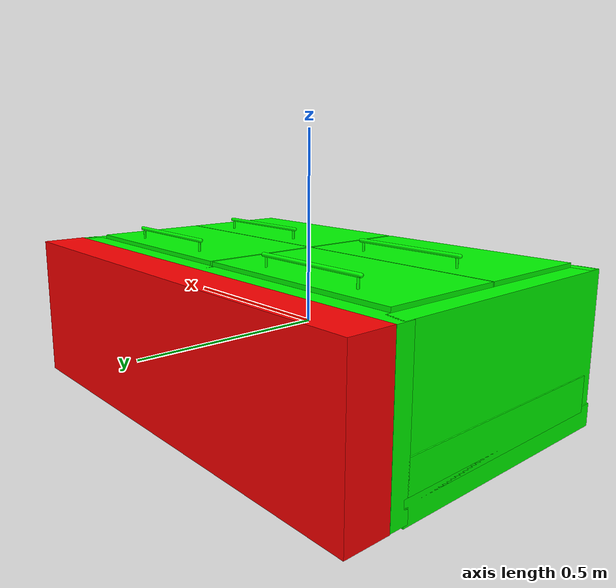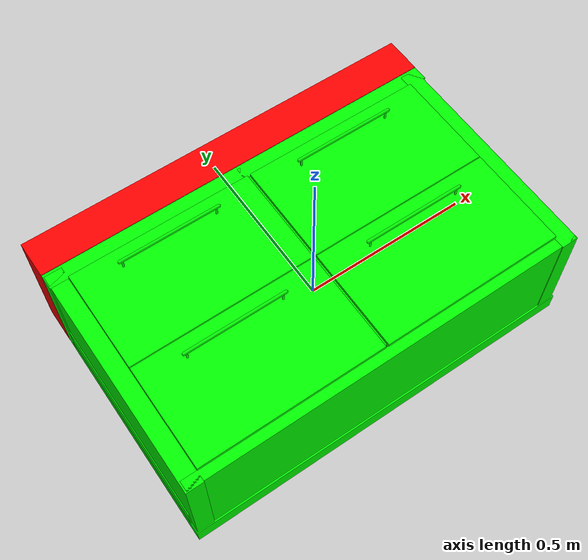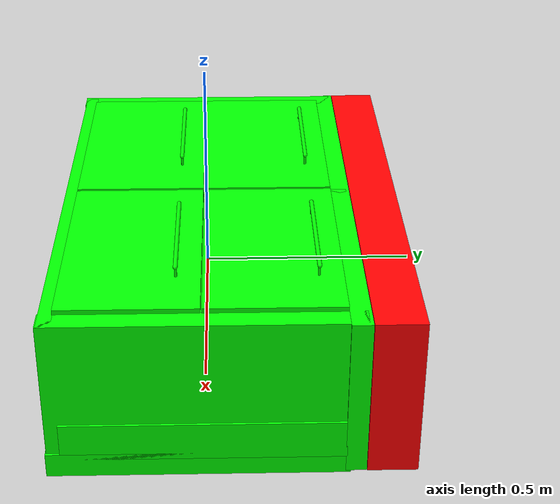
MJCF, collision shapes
<mujoco model="Dresser_205_1">
  <compiler angle="radian" boundmass="0.01"/>

  <default>
    <default class="/">
      <default class="__VISUAL_MJT__">
        <geom contype="0" conaffinity="0"/>
      </default>
      <default class="__STRUCTURAL_MJT__">
        <geom contype="8" conaffinity="15" group="4" friction="0.9 0.9 0.001" solref="0.025" solimp="0.998 0.998"/>
      </default>
      <default class="__DYNAMIC_MJT__">
        <geom conaffinity="15" group="4" friction="0.9 0.9 0.001" solref="0.025" solimp="0.998 0.998"/>
      </default>
    </default>
  </default>

  <asset>
    <texture type="2d" name="LightWoodCounters3" file="LightWoodCounters.png"/>
    <texture type="2d" name="DarkWoodSmooth" file="WoodGrains1.png"/>
    <texture type="2d" name="HammeredMetal_Dark" file="HammeredMetal_AlbedoTransparency.png"/>
    <material name="material_LightWoodCounters3" class="/" texture="LightWoodCounters3" rgba="0.698113 0.339363 0.135012 1"/>
    <material name="material_DarkWoodSmooth" class="/" texture="DarkWoodSmooth" rgba="0.235849 0.130508 0.0767622 1"/>
    <material name="material_HammeredMetal_Dark" class="/" texture="HammeredMetal_Dark" rgba="0.264706 0.264706 0.264706 1"/>
    <mesh name="Dresser_205_1_DresserMesh_0" class="/" content_type="model/obj" file="Dresser_205_1_DresserMesh/Dresser_205_1_DresserMesh_0.obj"/>
    <mesh name="Dresser_205_1_DresserMesh_1" class="/" content_type="model/obj" file="Dresser_205_1_DresserMesh/Dresser_205_1_DresserMesh_1.obj"/>
    <mesh name="Dresser_205_1_DrawerMesh_0" class="/" content_type="model/obj" file="Dresser_205_1_DrawerMesh_0/Dresser_205_1_DrawerMesh_0.obj"/>
    <mesh name="Dresser_205_1_handle_1_305mm_0" class="/" content_type="model/obj" file="Dresser_205_1_handle_1_305mm_0/Dresser_205_1_handle_1_305mm_0.obj"/>
    <mesh name="Dresser_205_1_DrawerMesh_1" class="/" content_type="model/obj" file="Dresser_205_1_DrawerMesh_1/Dresser_205_1_DrawerMesh_1.obj"/>
    <mesh name="Dresser_205_1_handle_1_305mm_1" class="/" content_type="model/obj" file="Dresser_205_1_handle_1_305mm_1/Dresser_205_1_handle_1_305mm_1.obj"/>
    <mesh name="Dresser_205_1_DrawerMesh_2" class="/" content_type="model/obj" file="Dresser_205_1_DrawerMesh_2/Dresser_205_1_DrawerMesh_2.obj"/>
    <mesh name="Dresser_205_1_handle_1_305mm_2" class="/" content_type="model/obj" file="Dresser_205_1_handle_1_305mm_2/Dresser_205_1_handle_1_305mm_2.obj"/>
    <mesh name="Dresser_205_1_DrawerMesh_3" class="/" content_type="model/obj" file="Dresser_205_1_DrawerMesh_3/Dresser_205_1_DrawerMesh_3.obj"/>
    <mesh name="Dresser_205_1_handle_1_305mm_3" class="/" content_type="model/obj" file="Dresser_205_1_handle_1_305mm_3/Dresser_205_1_handle_1_305mm_3.obj"/>
  </asset>

  <worldbody>
    <body name="Dresser_205_1">
      <body name="Dresser_205_1_DresserMesh" pos="0 -0.34961 -0.00119">
        <geom name="Dresser_205_1_DresserMesh_0" class="__VISUAL_MJT__" type="mesh" density="120" material="material_LightWoodCounters3" mesh="Dresser_205_1_DresserMesh_0"/>
        <geom name="Dresser_205_1_DresserMesh_1" class="__VISUAL_MJT__" type="mesh" density="120" material="material_DarkWoodSmooth" mesh="Dresser_205_1_DresserMesh_1"/>
        <geom name="Dresser_205_1_DresserMesh_PrimitiveCollider_0" class="__DYNAMIC_MJT__" size="0.60215 0.0232278 0.187448" pos="0 0.6749 0" quat="0 5.81145e-07 0 -1" type="box" density="120" rgba="0 1 0 1"/>
        <geom name="Dresser_205_1_DresserMesh_PrimitiveCollider_1" class="__DYNAMIC_MJT__" size="0.594623 0.0153666 0.187448" pos="0 0.021 0" quat="0 5.81145e-07 0 -1" type="box" density="120" rgba="0 1 0 1"/>
        <geom name="Dresser_205_1_DresserMesh_PrimitiveCollider_2" class="__DYNAMIC_MJT__" size="0.0253153 0.34366 0.187448" pos="0.571 0.347 6.63668e-07" quat="0 5.81145e-07 0 -1" type="box" density="120" rgba="0 1 0 1"/>
        <geom name="Dresser_205_1_DresserMesh_PrimitiveCollider_3" class="__DYNAMIC_MJT__" size="0.0253153 0.34366 0.187448" pos="-0.574 0.347 -6.67155e-07" quat="0 5.81145e-07 0 -1" type="box" density="120" rgba="0 1 0 1"/>
        <geom name="Dresser_205_1_DresserMesh_PrimitiveCollider_4" class="__DYNAMIC_MJT__" size="0.60215 0.331096 0.0283791" pos="1.90383e-07 0.3322 -0.1638" quat="0 5.81145e-07 0 -1" type="box" density="120" rgba="0 1 0 1"/>
        <geom name="Dresser_205_1_DresserMesh_PrimitiveCollider_5" class="__DYNAMIC_MJT__" size="0.60215 0.310474 0.0448418" pos="1.21295e-07 0.343678 -0.104358" quat="0 5.81145e-07 0 -1" type="box" density="120" rgba="0 1 0 1"/>
        <geom name="Dresser_205_1_DresserMesh_PrimitiveCollider_6" class="__DYNAMIC_MJT__" size="0.587964 0.00982915 0.128093" pos="-5.93253e-08 0.343378 0.0510417" quat="0 5.81145e-07 0 -1" type="box" density="120" rgba="0 1 0 1"/>
        <geom name="Dresser_205_1_DresserMesh_PrimitiveCollider_7" class="__DYNAMIC_MJT__" size="0.0106378 0.324231 0.187448" pos="-0.0021 0.366429 -2.44081e-09" quat="0 5.81145e-07 0 -1" type="box" density="120" rgba="0 1 0 1"/>
        <site name="Dresser_205_1_DresserMesh_Receptacle_0" class="/" pos="0 0.754792 0" quat="0 1 0 0" size="0.602611 0.0557916 0.188205" type="box" rgba="1 0 0 1"/>
        <body name="Dresser_205_1_DrawerMesh_0" pos="-0.275986 0.478063 0.0708615">
          <joint name="Dresser_205_1_joint" class="/" pos="0 0 0" axis="0 0 1" type="slide" range="0 0.206" damping="0.1" frictionloss="2"/>
          <geom name="Dresser_205_1_DrawerMesh_0" class="__VISUAL_MJT__" type="mesh" density="100" material="material_DarkWoodSmooth" mesh="Dresser_205_1_DrawerMesh_0"/>
          <geom name="Dresser_205_1_DrawerMesh_0_PrimitiveCollider_0" class="__DYNAMIC_MJT__" size="0.257204 0.00876249 0.117363" pos="0 -0.1084 -0.0140118" quat="0 3.27826e-07 0 -1" type="box" density="100" rgba="0 1 0 1"/>
          <geom name="Dresser_205_1_DrawerMesh_0_PrimitiveCollider_1" class="__DYNAMIC_MJT__" size="0.00909605 0.135623 0.117363" pos="0.2484 0.0209999 -0.0140115" quat="0 3.27826e-07 0 -1" type="box" density="100" rgba="0 1 0 1"/>
          <geom name="Dresser_205_1_DrawerMesh_0_PrimitiveCollider_2" class="__DYNAMIC_MJT__" size="0.00909605 0.135623 0.117363" pos="-0.2495 0.021 -0.0140118" quat="0 3.27826e-07 0 -1" type="box" density="100" rgba="0 1 0 1"/>
          <geom name="Dresser_205_1_DrawerMesh_0_PrimitiveCollider_3" class="__DYNAMIC_MJT__" size="0.257204 0.136993 0.0112078" pos="8.9407e-08 0.01983 -0.120412" quat="0 3.27826e-07 0 -1" type="box" density="100" rgba="0 1 0 1"/>
          <geom name="Dresser_205_1_DrawerMesh_0_PrimitiveCollider_4" class="__DYNAMIC_MJT__" size="0.257204 0.136993 0.0112078" pos="-5.96046e-08 0.01983 0.0956882" quat="0 3.27826e-07 0 -1" type="box" density="100" rgba="0 1 0 1"/>
          <geom name="Dresser_205_1_DrawerMesh_0_PrimitiveCollider_5" class="__DYNAMIC_MJT__" size="0.271882 0.1534 0.0112078" pos="-8.9407e-08 0.0200824 0.115888" quat="0 3.27826e-07 0 -1" type="box" density="100" rgba="0 1 0 1"/>
          <site name="Dresser_205_1_DrawerMesh_0_Receptacle_0" class="/" pos="0 0.0284318 0.012494" quat="0 1 0 0" size="0.23667 0.129496 0.0980626" type="box" rgba="1 0 0 1"/>
          <body name="Dresser_205_1_handle_1_305mm_0" pos="0 0.119 0.121">
            <geom name="Dresser_205_1_handle_1_305mm_0" class="__VISUAL_MJT__" type="mesh" material="material_HammeredMetal_Dark" mesh="Dresser_205_1_handle_1_305mm_0"/>
            <geom name="Dresser_205_1_handle_1_305mm_0_PrimitiveCollider_0" class="__DYNAMIC_MJT__" size="0.005 0.148619" pos="0 0 0.0337" quat="0.5 0.5 -0.5 -0.5" type="capsule" rgba="0 1 0 1"/>
            <geom name="Dresser_205_1_handle_1_305mm_0_PrimitiveCollider_1" class="__DYNAMIC_MJT__" size="0.00300521 0.013226" pos="-0.14153 0 0.0159" quat="0 1 0 0" type="capsule" rgba="0 1 0 1"/>
            <geom name="Dresser_205_1_handle_1_305mm_0_PrimitiveCollider_2" class="__DYNAMIC_MJT__" size="0.00300521 0.013226" pos="0.1402 0 0.0159" quat="0 1 0 0" type="capsule" rgba="0 1 0 1"/>
          </body>
        </body>
        <body name="Dresser_205_1_DrawerMesh_1" pos="-0.275986 0.168286 0.0708615">
          <joint name="Dresser_205_1_DrawerMesh_1__1" class="/" pos="0 0 0" axis="0 0 1" type="slide" range="0 0.206" damping="0.1" frictionloss="2"/>
          <geom name="Dresser_205_1_DrawerMesh_1" class="__VISUAL_MJT__" type="mesh" density="100" material="material_DarkWoodSmooth" mesh="Dresser_205_1_DrawerMesh_1"/>
          <geom name="Dresser_205_1_DrawerMesh_1_PrimitiveCollider_0" class="__DYNAMIC_MJT__" size="0.257204 0.00876249 0.117363" pos="0 -0.1084 -0.0140118" quat="0 3.27826e-07 0 -1" type="box" density="100" rgba="0 1 0 1"/>
          <geom name="Dresser_205_1_DrawerMesh_1_PrimitiveCollider_1" class="__DYNAMIC_MJT__" size="0.00909605 0.135623 0.117363" pos="0.2484 0.0209999 -0.0140115" quat="0 3.27826e-07 0 -1" type="box" density="100" rgba="0 1 0 1"/>
          <geom name="Dresser_205_1_DrawerMesh_1_PrimitiveCollider_2" class="__DYNAMIC_MJT__" size="0.00909605 0.135623 0.117363" pos="-0.2495 0.021 -0.0140118" quat="0 3.27826e-07 0 -1" type="box" density="100" rgba="0 1 0 1"/>
          <geom name="Dresser_205_1_DrawerMesh_1_PrimitiveCollider_3" class="__DYNAMIC_MJT__" size="0.257204 0.136993 0.0112078" pos="8.9407e-08 0.01983 -0.120412" quat="0 3.27826e-07 0 -1" type="box" density="100" rgba="0 1 0 1"/>
          <geom name="Dresser_205_1_DrawerMesh_1_PrimitiveCollider_4" class="__DYNAMIC_MJT__" size="0.257204 0.136993 0.0112078" pos="-5.96046e-08 0.01983 0.0956882" quat="0 3.27826e-07 0 -1" type="box" density="100" rgba="0 1 0 1"/>
          <geom name="Dresser_205_1_DrawerMesh_1_PrimitiveCollider_5" class="__DYNAMIC_MJT__" size="0.271882 0.1534 0.0112078" pos="-8.9407e-08 0.0200824 0.115888" quat="0 3.27826e-07 0 -1" type="box" density="100" rgba="0 1 0 1"/>
          <site name="Dresser_205_1_DrawerMesh_1_Receptacle_0" class="/" pos="0 0.0284318 0.012494" quat="0 1 0 0" size="0.23667 0.129496 0.0980626" type="box" rgba="1 0 0 1"/>
          <body name="Dresser_205_1_handle_1_305mm_1" pos="0 0.119 0.121">
            <geom name="Dresser_205_1_handle_1_305mm_1" class="__VISUAL_MJT__" type="mesh" material="material_HammeredMetal_Dark" mesh="Dresser_205_1_handle_1_305mm_1"/>
            <geom name="Dresser_205_1_handle_1_305mm_1_PrimitiveCollider_0" class="__DYNAMIC_MJT__" size="0.005 0.148619" pos="0 0 0.0337" quat="0.5 0.5 -0.5 -0.5" type="capsule" rgba="0 1 0 1"/>
            <geom name="Dresser_205_1_handle_1_305mm_1_PrimitiveCollider_1" class="__DYNAMIC_MJT__" size="0.00300521 0.013226" pos="-0.14153 0 0.0159" quat="0 1 0 0" type="capsule" rgba="0 1 0 1"/>
            <geom name="Dresser_205_1_handle_1_305mm_1_PrimitiveCollider_2" class="__DYNAMIC_MJT__" size="0.00300521 0.013226" pos="0.1402 0 0.0159" quat="0 1 0 0" type="capsule" rgba="0 1 0 1"/>
          </body>
        </body>
        <body name="Dresser_205_1_DrawerMesh_2" pos="0.275799 0.168286 0.0708615">
          <joint name="Dresser_205_1_DrawerMesh_2__1" class="/" pos="0 0 0" axis="0 0 1" type="slide" range="0 0.206" damping="0.1" frictionloss="2"/>
          <geom name="Dresser_205_1_DrawerMesh_2" class="__VISUAL_MJT__" type="mesh" density="100" material="material_DarkWoodSmooth" mesh="Dresser_205_1_DrawerMesh_2"/>
          <geom name="Dresser_205_1_DrawerMesh_2_PrimitiveCollider_0" class="__DYNAMIC_MJT__" size="0.257204 0.00876249 0.117363" pos="0 -0.1084 -0.0140118" quat="0 3.27826e-07 0 -1" type="box" density="100" rgba="0 1 0 1"/>
          <geom name="Dresser_205_1_DrawerMesh_2_PrimitiveCollider_1" class="__DYNAMIC_MJT__" size="0.00909605 0.135623 0.117363" pos="0.2484 0.0209999 -0.0140115" quat="0 3.27826e-07 0 -1" type="box" density="100" rgba="0 1 0 1"/>
          <geom name="Dresser_205_1_DrawerMesh_2_PrimitiveCollider_2" class="__DYNAMIC_MJT__" size="0.00909605 0.135623 0.117363" pos="-0.2495 0.021 -0.0140118" quat="0 3.27826e-07 0 -1" type="box" density="100" rgba="0 1 0 1"/>
          <geom name="Dresser_205_1_DrawerMesh_2_PrimitiveCollider_3" class="__DYNAMIC_MJT__" size="0.257204 0.136993 0.0112078" pos="8.9407e-08 0.01983 -0.120412" quat="0 3.27826e-07 0 -1" type="box" density="100" rgba="0 1 0 1"/>
          <geom name="Dresser_205_1_DrawerMesh_2_PrimitiveCollider_4" class="__DYNAMIC_MJT__" size="0.257204 0.136993 0.0112078" pos="-5.96046e-08 0.01983 0.0956882" quat="0 3.27826e-07 0 -1" type="box" density="100" rgba="0 1 0 1"/>
          <geom name="Dresser_205_1_DrawerMesh_2_PrimitiveCollider_5" class="__DYNAMIC_MJT__" size="0.271882 0.1534 0.0112078" pos="-8.9407e-08 0.0200824 0.115888" quat="0 3.27826e-07 0 -1" type="box" density="100" rgba="0 1 0 1"/>
          <site name="Dresser_205_1_DrawerMesh_2_Receptacle_0" class="/" pos="0 0.0284318 0.012494" quat="0 1 0 0" size="0.23667 0.129496 0.0980626" type="box" rgba="1 0 0 1"/>
          <body name="Dresser_205_1_handle_1_305mm_2" pos="0 0.119 0.121">
            <geom name="Dresser_205_1_handle_1_305mm_2" class="__VISUAL_MJT__" type="mesh" material="material_HammeredMetal_Dark" mesh="Dresser_205_1_handle_1_305mm_2"/>
            <geom name="Dresser_205_1_handle_1_305mm_2_PrimitiveCollider_0" class="__DYNAMIC_MJT__" size="0.005 0.148619" pos="0 0 0.0337" quat="0.5 0.5 -0.5 -0.5" type="capsule" rgba="0 1 0 1"/>
            <geom name="Dresser_205_1_handle_1_305mm_2_PrimitiveCollider_1" class="__DYNAMIC_MJT__" size="0.00300521 0.013226" pos="-0.14153 0 0.0159" quat="0 1 0 0" type="capsule" rgba="0 1 0 1"/>
            <geom name="Dresser_205_1_handle_1_305mm_2_PrimitiveCollider_2" class="__DYNAMIC_MJT__" size="0.00300521 0.013226" pos="0.1402 0 0.0159" quat="0 1 0 0" type="capsule" rgba="0 1 0 1"/>
          </body>
        </body>
        <body name="Dresser_205_1_DrawerMesh_3" pos="0.275799 0.478063 0.0708615">
          <joint name="Dresser_205_1_DrawerMesh_3__1" class="/" pos="0 0 0" axis="0 0 1" type="slide" range="0 0.206" damping="0.1" frictionloss="2"/>
          <geom name="Dresser_205_1_DrawerMesh_3" class="__VISUAL_MJT__" type="mesh" density="100" material="material_DarkWoodSmooth" mesh="Dresser_205_1_DrawerMesh_3"/>
          <geom name="Dresser_205_1_DrawerMesh_3_PrimitiveCollider_0" class="__DYNAMIC_MJT__" size="0.257204 0.00876249 0.117363" pos="0 -0.1084 -0.0140118" quat="0 3.27826e-07 0 -1" type="box" density="100" rgba="0 1 0 1"/>
          <geom name="Dresser_205_1_DrawerMesh_3_PrimitiveCollider_1" class="__DYNAMIC_MJT__" size="0.00909605 0.135623 0.117363" pos="0.2484 0.0209999 -0.0140115" quat="0 3.27826e-07 0 -1" type="box" density="100" rgba="0 1 0 1"/>
          <geom name="Dresser_205_1_DrawerMesh_3_PrimitiveCollider_2" class="__DYNAMIC_MJT__" size="0.00909605 0.135623 0.117363" pos="-0.2495 0.021 -0.0140118" quat="0 3.27826e-07 0 -1" type="box" density="100" rgba="0 1 0 1"/>
          <geom name="Dresser_205_1_DrawerMesh_3_PrimitiveCollider_3" class="__DYNAMIC_MJT__" size="0.257204 0.136993 0.0112078" pos="8.9407e-08 0.01983 -0.120412" quat="0 3.27826e-07 0 -1" type="box" density="100" rgba="0 1 0 1"/>
          <geom name="Dresser_205_1_DrawerMesh_3_PrimitiveCollider_4" class="__DYNAMIC_MJT__" size="0.257204 0.136993 0.0112078" pos="-5.96046e-08 0.01983 0.0956882" quat="0 3.27826e-07 0 -1" type="box" density="100" rgba="0 1 0 1"/>
          <geom name="Dresser_205_1_DrawerMesh_3_PrimitiveCollider_5" class="__DYNAMIC_MJT__" size="0.271882 0.1534 0.0112078" pos="-8.9407e-08 0.0200824 0.115888" quat="0 3.27826e-07 0 -1" type="box" density="100" rgba="0 1 0 1"/>
          <site name="Dresser_205_1_DrawerMesh_3_Receptacle_0" class="/" pos="0 0.0284318 0.012494" quat="0 1 0 0" size="0.23667 0.129496 0.0980626" type="box" rgba="1 0 0 1"/>
          <body name="Dresser_205_1_handle_1_305mm_3" pos="0 0.119 0.121">
            <geom name="Dresser_205_1_handle_1_305mm_3" class="__VISUAL_MJT__" type="mesh" material="material_HammeredMetal_Dark" mesh="Dresser_205_1_handle_1_305mm_3"/>
            <geom name="Dresser_205_1_handle_1_305mm_3_PrimitiveCollider_0" class="__DYNAMIC_MJT__" size="0.005 0.148619" pos="0 0 0.0337" quat="0.5 0.5 -0.5 -0.5" type="capsule" rgba="0 1 0 1"/>
            <geom name="Dresser_205_1_handle_1_305mm_3_PrimitiveCollider_1" class="__DYNAMIC_MJT__" size="0.00300521 0.013226" pos="-0.14153 0 0.0159" quat="0 1 0 0" type="capsule" rgba="0 1 0 1"/>
            <geom name="Dresser_205_1_handle_1_305mm_3_PrimitiveCollider_2" class="__DYNAMIC_MJT__" size="0.00300521 0.013226" pos="0.1402 0 0.0159" quat="0 1 0 0" type="capsule" rgba="0 1 0 1"/>
          </body>
        </body>
      </body>
    </body>
  </worldbody>

  <contact>
    <exclude name="//unnamed_contact_0" body1="Dresser_205_1_DresserMesh" body2="Dresser_205_1_DrawerMesh_0"/>
    <exclude body1="Dresser_205_1_DresserMesh" body2="Dresser_205_1_handle_1_305mm_0"/>
    <exclude name="//unnamed_contact_1" body1="Dresser_205_1_DresserMesh" body2="Dresser_205_1_DrawerMesh_1"/>
    <exclude body1="Dresser_205_1_DresserMesh" body2="Dresser_205_1_handle_1_305mm_1"/>
    <exclude name="//unnamed_contact_2" body1="Dresser_205_1_DresserMesh" body2="Dresser_205_1_DrawerMesh_2"/>
    <exclude body1="Dresser_205_1_DresserMesh" body2="Dresser_205_1_handle_1_305mm_2"/>
    <exclude name="//unnamed_contact_3" body1="Dresser_205_1_DresserMesh" body2="Dresser_205_1_DrawerMesh_3"/>
    <exclude body1="Dresser_205_1_DresserMesh" body2="Dresser_205_1_handle_1_305mm_3"/>
    <exclude body1="Dresser_205_1_DrawerMesh_0" body2="Dresser_205_1_handle_1_305mm_0"/>
    <exclude body1="Dresser_205_1_DrawerMesh_0" body2="Dresser_205_1_DrawerMesh_1"/>
    <exclude body1="Dresser_205_1_DrawerMesh_0" body2="Dresser_205_1_handle_1_305mm_1"/>
    <exclude body1="Dresser_205_1_DrawerMesh_0" body2="Dresser_205_1_DrawerMesh_2"/>
    <exclude body1="Dresser_205_1_DrawerMesh_0" body2="Dresser_205_1_handle_1_305mm_2"/>
    <exclude body1="Dresser_205_1_DrawerMesh_0" body2="Dresser_205_1_DrawerMesh_3"/>
    <exclude body1="Dresser_205_1_DrawerMesh_0" body2="Dresser_205_1_handle_1_305mm_3"/>
    <exclude body1="Dresser_205_1_handle_1_305mm_0" body2="Dresser_205_1_DrawerMesh_1"/>
    <exclude body1="Dresser_205_1_handle_1_305mm_0" body2="Dresser_205_1_handle_1_305mm_1"/>
    <exclude body1="Dresser_205_1_handle_1_305mm_0" body2="Dresser_205_1_DrawerMesh_2"/>
    <exclude body1="Dresser_205_1_handle_1_305mm_0" body2="Dresser_205_1_handle_1_305mm_2"/>
    <exclude body1="Dresser_205_1_handle_1_305mm_0" body2="Dresser_205_1_DrawerMesh_3"/>
    <exclude body1="Dresser_205_1_handle_1_305mm_0" body2="Dresser_205_1_handle_1_305mm_3"/>
    <exclude body1="Dresser_205_1_DrawerMesh_1" body2="Dresser_205_1_handle_1_305mm_1"/>
    <exclude body1="Dresser_205_1_DrawerMesh_1" body2="Dresser_205_1_DrawerMesh_2"/>
    <exclude body1="Dresser_205_1_DrawerMesh_1" body2="Dresser_205_1_handle_1_305mm_2"/>
    <exclude body1="Dresser_205_1_DrawerMesh_1" body2="Dresser_205_1_DrawerMesh_3"/>
    <exclude body1="Dresser_205_1_DrawerMesh_1" body2="Dresser_205_1_handle_1_305mm_3"/>
    <exclude body1="Dresser_205_1_handle_1_305mm_1" body2="Dresser_205_1_DrawerMesh_2"/>
    <exclude body1="Dresser_205_1_handle_1_305mm_1" body2="Dresser_205_1_handle_1_305mm_2"/>
    <exclude body1="Dresser_205_1_handle_1_305mm_1" body2="Dresser_205_1_DrawerMesh_3"/>
    <exclude body1="Dresser_205_1_handle_1_305mm_1" body2="Dresser_205_1_handle_1_305mm_3"/>
    <exclude body1="Dresser_205_1_DrawerMesh_2" body2="Dresser_205_1_handle_1_305mm_2"/>
    <exclude body1="Dresser_205_1_DrawerMesh_2" body2="Dresser_205_1_DrawerMesh_3"/>
    <exclude body1="Dresser_205_1_DrawerMesh_2" body2="Dresser_205_1_handle_1_305mm_3"/>
    <exclude body1="Dresser_205_1_handle_1_305mm_2" body2="Dresser_205_1_DrawerMesh_3"/>
    <exclude body1="Dresser_205_1_handle_1_305mm_2" body2="Dresser_205_1_handle_1_305mm_3"/>
    <exclude body1="Dresser_205_1_DrawerMesh_3" body2="Dresser_205_1_handle_1_305mm_3"/>
  </contact>
</mujoco>
